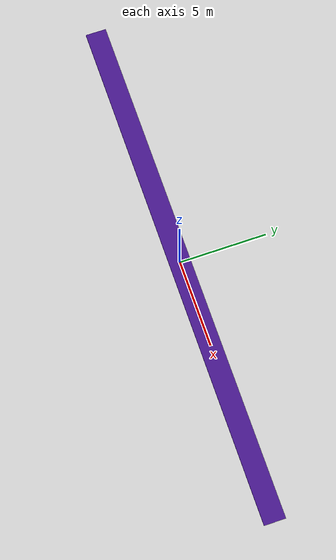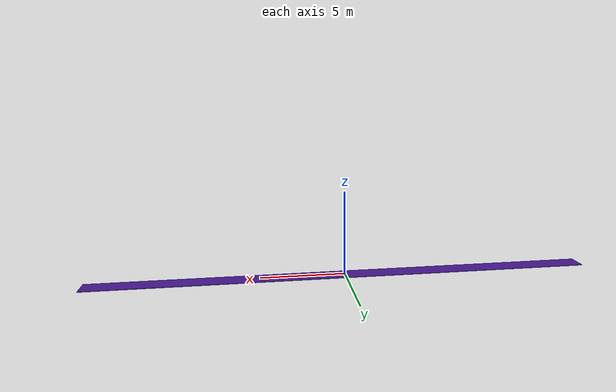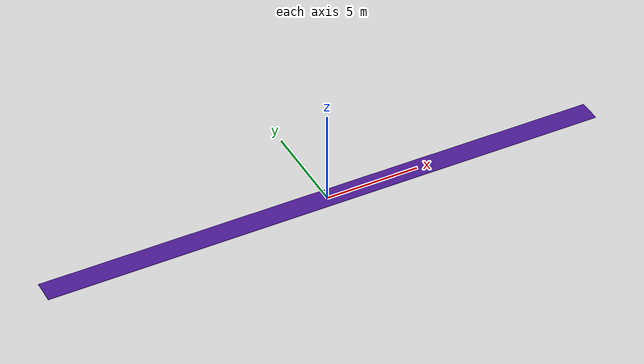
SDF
<?xml version="1.0" ?>
<sdf version="1.5">
  <model name="floor_30m">
    <static>true</static>
    <link name="link">
      <pose>0 0 -0.02 0 0 0</pose>
      <collision name="collision">
        <geometry>
          <box>
            <size>30.0 1.2 0.04</size>
          </box>
        </geometry>
      </collision>
      <visual name="visual">
        <geometry>
          <box>
            <size>30.0 1.2 0.04</size>
          </box>
        </geometry>
        <material>
          <script>
            <name>Gazebo/Indigo</name>
            <uri>file://media/materials/scripts/gazebo.material</uri>
          </script>
        </material>
      </visual>
    </link>
  </model>
</sdf>
